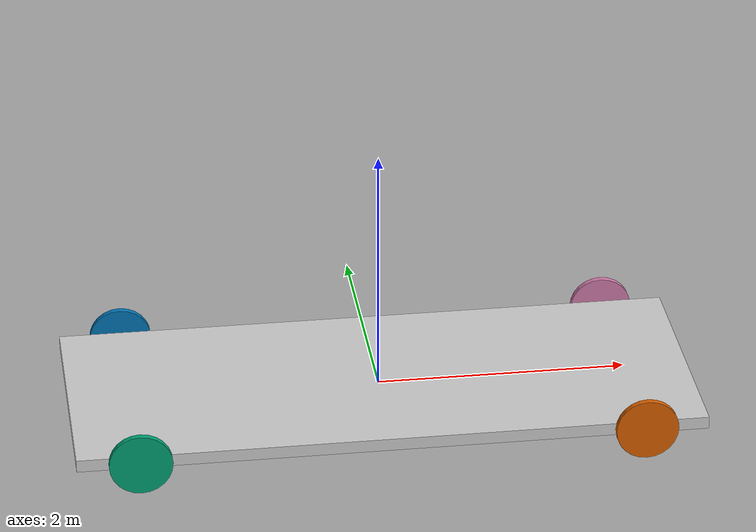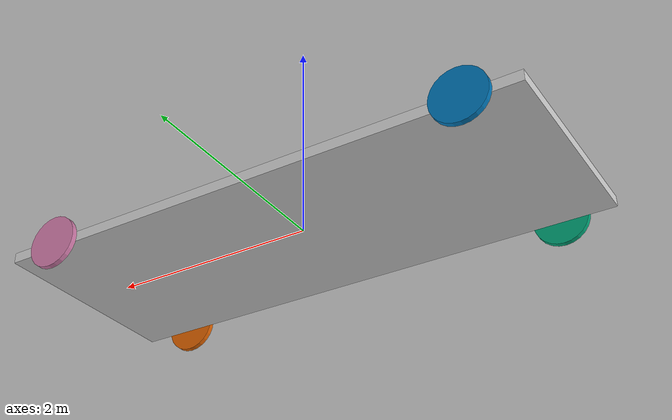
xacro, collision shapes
<?xml version="1.0"?>
<robot xmlns:xacro="http://www.ros.org/wiki/xacro" name="car">
    <material name="gray">
        <color rgba="0.8 0.8 0.8 1" />
    </material>
    <xacro:property name="wheel_radius" value="0.25" />
    <xacro:property name="wheel_width" value="0.05" />
    <xacro:property name="PI" value="3.1415926" />
    <xacro:property name="base_heigh" value="${wheel_radius}" />
    <xacro:property name="left_turn" value="bottom_turn" />
    <xacro:property name="right_turn" value="top_turn" />
    <xacro:property name="left_bottom_wheel" value="left_bottom" />
    <xacro:property name="left_top_wheel" value="left_top" />
    <xacro:property name="right_bottom_wheel" value="right_bottom" />
    <xacro:property name="right_top_wheel" value="right_top" />
    <xacro:macro name="wheel" params="link_name parent x y z r p yaw">
        <link name="wheel_${link_name}">
            <inertial>
                <origin xyz="0.0 0.0 0.0" rpy="0.0 0.0 0.0" />
                <mass value="10.0" />
                <inertia ixx="1.0" ixy="0.0" ixz="0.0" iyy="1.0" iyz="0.0" izz="1.0" />
            </inertial>
            <visual>
                <xacro:if value="${y &lt; 0}">
                    <origin xyz="0.0 ${wheel_width/2} 0" rpy="${PI} 0.0 0.0" />
                </xacro:if>
                <xacro:unless value="${y &lt; 0}">
                    <origin xyz="0.0 ${-wheel_width/2} 0" rpy="0.0 0.0 0.0" />
                </xacro:unless>
                <geometry>
                    <mesh filename="package://car_description/meshes/Wheel.dae" scale="7 7 7" />
                </geometry>
            </visual>
            <collision>
                <origin xyz="0.0 0.0 0.0" rpy="${PI/2}  0.0 0.0" />
                <geometry>
                    <cylinder radius="${wheel_radius}" length="${wheel_width}" />
                </geometry>
                <surface>
                    <friction>
                        <ode>
                            <mu>1000000.0</mu>
                            <mu2>1000000.0</mu2>
                            <slip1>1.0</slip1>
                            <slip2>1.0</slip2>
                        </ode>
                    </friction>
                </surface>
            </collision>
        </link>
        <joint name="joint_${link_name}" type="continuous">
            <origin xyz="${x} ${y} ${z}" rpy="${r} ${p} ${yaw}" />
            <parent link="${parent}" />
            <child link="wheel_${link_name}" />
            <axis xyz="0.0 1 0.0" />
            <dynamics damping="0.7" friction="1000" />
        </joint>
    </xacro:macro>
    <xacro:macro name="turn" params="link_name parent x y z r p yaw">
        <link name="turn_${link_name}">
            <inertial>
                <origin xyz="0.0 0.0 0.0" rpy="0.0 0.0 0.0" />
                <mass value="10.0" />
                <inertia ixx="1.0" ixy="0.0" ixz="0.0" iyy="1.0" iyz="0.0" izz="1.0" />
            </inertial>
            <visual name="">
                <origin xyz="0.0 0.0 0.0" rpy="0.0 0.0 0.0" />
                <geometry>
                    <box size="0.01 0.01 0.01" />
                </geometry>
                <material name="">
                    <color rgba="1.0 0.0 0.0 1.0" />
                    <texture filename="" />
                </material>
            </visual>
            <collision>
                <origin xyz="0.0 0.0 0.0" rpy="0.0 0.0 0.0" />
                <geometry>
                    <box size="0.01 0.01 0.01" />
                </geometry>
            </collision>
        </link>
        <joint name="joint_${link_name}" type="revolute">
            <origin xyz="${x} ${y} ${z}" rpy="${r} ${p} ${yaw}" />
            <parent link="${parent}" />
            <child link="turn_${link_name}" />
            <axis xyz="0.0 0.0 1" />
            <limit lower="${-PI}" upper="${PI}" effort="1000.0" velocity="100.0" />
        </joint>
    </xacro:macro>
    <link name="base">
        <visual>
            <origin xyz="0.0 0.0 0.0" rpy="0.0 0.0 0.0" />
            <geometry>
                <box size="5 2 0.1" />
            </geometry>
            <material name="gray" />
        </visual>
        <inertial>
            <origin xyz="0.0 0.0 0.0" rpy="0.0 0.0 0.0" />
            <mass value="100.0" />
            <inertia ixx="1.0" ixy="0.0" ixz="0.0" iyy="1.0" iyz="0.0" izz="1.0" />
        </inertial>
        <collision>
            <origin xyz="0.0 0.0 0.0" rpy="0.0 0.0 0.0" />
            <geometry>
                <box size="5 2 0.1" />
            </geometry>
        </collision>
    </link>

    <xacro:turn link_name="${left_turn}" parent="base" x="-2" y="${-1-wheel_width/2}"
        z="0" r="0" p="0" yaw="0"></xacro:turn>
    <xacro:wheel link_name="${left_bottom_wheel}" parent="turn_${left_turn}" x="0" y="-0.001" z="0"
        r="0"
        p="0"
        yaw="0" />
    <xacro:turn link_name="${right_turn}" parent="base" x="-2" y="${1+wheel_width/2}"
        z="0" r="0" p="0" yaw="0"></xacro:turn>
    <xacro:wheel link_name="${left_top_wheel}" parent="turn_${right_turn}" x="0" y="0"
        z="0" r="0" p="0"
        yaw="0" />
    <xacro:wheel link_name="${right_bottom_wheel}" parent="base" x="2" y="${-1-wheel_width/2}"
        z="0" r="0" p="0"
        yaw="0" />
    <xacro:wheel link_name="${right_top_wheel}" parent="base" x="2" y="${1+wheel_width/2}"
        z="0" r="0" p="0"
        yaw="0" />

    <xacro:macro name="joint_controller" params="joint_name">
        <joint name="${joint_name}">
            <command_interface name="velocity">
                <param name="min">-5</param>
                <param name="max">5</param>
            </command_interface>
            <state_interface name="position" />
            <state_interface name="velocity" />
            <state_interface name="effort" />
        </joint>
    </xacro:macro>
    <ros2_control name="IgnitionSystem" type="system">
        <hardware>
            <plugin>ign_ros2_control/IgnitionSystem</plugin>
        </hardware>
        <xacro:joint_controller joint_name="joint_${left_bottom_wheel}" />
        <xacro:joint_controller joint_name="joint_${left_top_wheel}" />
        <xacro:joint_controller joint_name="joint_${right_bottom_wheel}" />
        <xacro:joint_controller joint_name="joint_${right_top_wheel}" />
        <joint name="joint_${left_turn}">
            <command_interface name="position">
                <param name="min">${-PI}</param>
                <param name="max">${PI}</param>
            </command_interface>
            <state_interface name="position" />
            <state_interface name="velocity" />
            <state_interface name="effort" />
        </joint>
        <joint name="joint_${right_turn}">
            <command_interface name="position">
                <param name="min">${-PI}</param>
                <param name="max">${PI}</param>
            </command_interface>
            <state_interface name="position" />
            <state_interface name="velocity" />
            <state_interface name="effort" />
        </joint>
    </ros2_control>
    <gazebo>
        <!-- Joint state publisher -->
        <plugin filename="ign_ros2_control-system"
            name="ign_ros2_control::IgnitionROS2ControlPlugin">
            <parameters>$(find car_description)/config/car.yaml</parameters>
        </plugin>
    </gazebo>
</robot>
